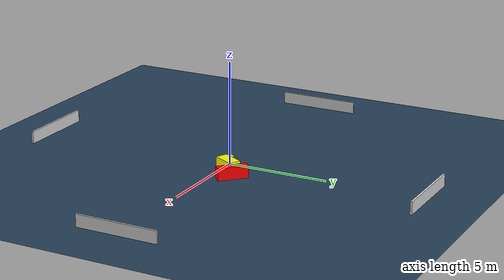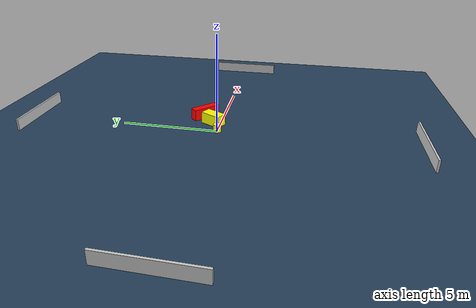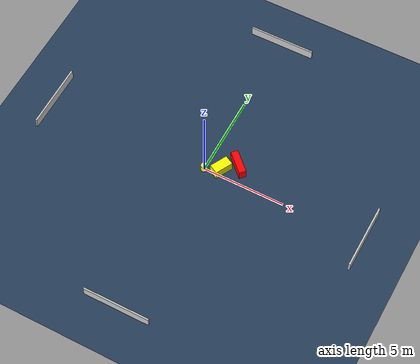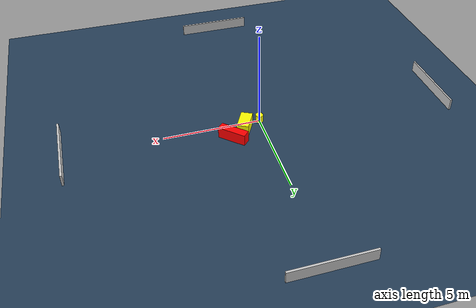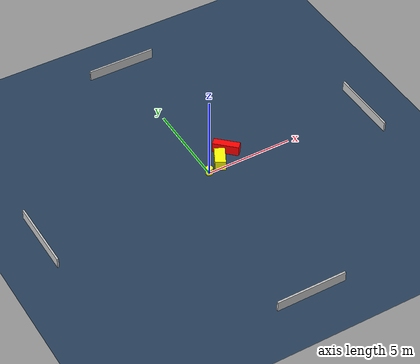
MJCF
<?xml version="1.0" ?>
<mujoco model="generated_environment">
  <option timestep="0.01" integrator="RK4" cone="elliptic"/>
  <default>
    <geom density="1"/>
  </default>
  <asset>
    <texture builtin="gradient" height="3072" name="skybox" rgb1="0.3 0.5 0.7" rgb2="0 0 0" type="skybox" width="512"/>
    <texture builtin="checker" height="300" name="groundplane" rgb1="0.2 0.3 0.4" rgb2="0.1 0.2 0.3" type="2d" width="300"/>
    <material name="groundplane" reflectance="0.2" texrepeat="5 5" texture="groundplane"/>
  </asset>
  <worldbody>
    <light dir="0 0 -1" directional="true" pos="0 0 1.5"/>
    <geom condim="3" friction="0.5 0.005 0.001" material="groundplane" name="floor" pos="0 0 0" size="0 0 0.05" type="plane"/>
    <body name="walls">
      <geom name="wall_1" condim="4" pos="-10.0 0.0 0.3" rgba="0.800000011920929 0.800000011920929 0.800000011920929 1.0" size="0.05 2.0 0.3" type="box"/>
      <geom name="wall_2" condim="4" pos="10.0 0.0 0.3" rgba="0.800000011920929 0.800000011920929 0.800000011920929 1.0" size="0.05 2.0 0.3" type="box"/>
      <geom name="wall_3" condim="4" pos="0.0 -10.0 0.3" rgba="0.800000011920929 0.800000011920929 0.800000011920929 1.0" size="2.0 0.05 0.3" type="box"/>
      <geom name="wall_4" condim="4" pos="0.0 10.0 0.3" rgba="0.800000011920929 0.800000011920929 0.800000011920929 1.0" size="2.0 0.05 0.3" type="box"/>
    </body>
    <body name="robot">
      <joint name="joint_x" type="slide" pos="0 0 0" axis="1 0 0"/>
      <joint name="joint_y" type="slide" pos="0 0 0" axis="0 1 0"/>
      <geom name="robot" type="cylinder" pos="0.0 0.0 0.2" size="0.2 0.2 0.0" mass="5.0" friction="1.0 0.005 0.0001" condim="4" rgba="1.0 1.0 0.0 1.0"/>
    </body>
    <body name="obstacle_1_movable">
      <geom name="obstacle_1_movable" condim="4" pos="0.8878326267936048 0.3895829498407625 0.3" euler="0 0 332.5610651169679" friction="0.0 0.005 0.001" rgba="1.0 1.0 0.0 1.0" size="0.29850079276278324 0.5578613686256712 0.3" type="box" mass="0.1"/>
      <joint type="free"/>
    </body>
    <body name="obstacle_2_static">
      <geom name="obstacle_2_static" condim="4" pos="1.6627137132748513 1.0210421587000256 0.3" euler="0 0 226.3230530754697" friction="0.0 0.005 0.001" rgba="1.0 0.0 0.0 1.0" size="0.21407847470616637 0.7417270004831051 0.3" type="box"/>
    </body>
  </worldbody>
  <actuator>
    <motor name="actuator_x" joint="joint_x" gear="1" ctrlrange="-1 1"/>
    <motor name="actuator_y" joint="joint_y" gear="1" ctrlrange="-1 1"/>
  </actuator>
</mujoco>
